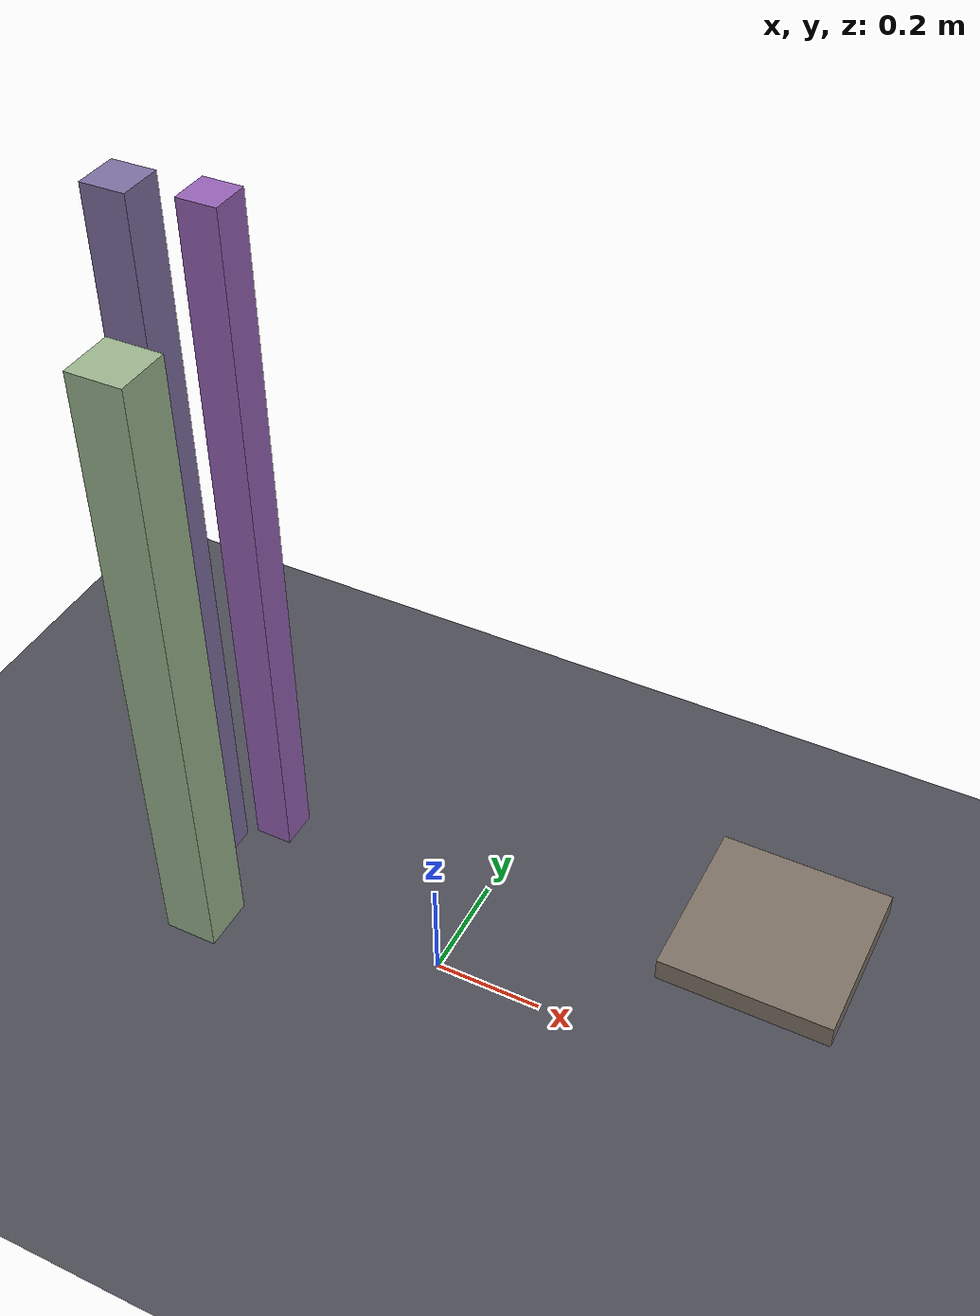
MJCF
<mujoco model="pillar_avoid_8">
  <compiler angle="radian" autolimits="true" boundmass="0" balanceinertia="true"/>
  <option impratio="10" gravity="0 0 -9.8" integrator="implicitfast" cone="elliptic" jacobian="sparse" noslip_iterations="4">
    <flag multiccd="enable" contact="enable" warmstart="enable"/>
  </option>
  <size njmax="6000" nconmax="6000"/>
  <visual><global offwidth="1280" offheight="720"/><map znear="0.001"/>
    <headlight ambient="0.45 0.45 0.45" diffuse="0.6 0.6 0.6"/></visual>
  <worldbody>
    <light pos="0.4 0.4 3" dir="0 0 -1" diffuse="0.7 0.7 0.7"/>
    <!-- Obstacle-avoidance variant 8: 3 tall PHYSICAL pillars; placements blocking >10%
         of exo-camera sightlines to the arm excluded (training view preserved). -->
    <body name="pillars" pos="0 0 0"><geom name="floor" type="plane" size="5 5 0.1" pos="0 0 0" rgba="0.30 0.30 0.34 1" contype="8" conaffinity="15"/><geom name="obj_pad" type="box" pos="0.60 0 0.42" size="0.14 0.14 0.02" rgba="0.5 0.45 0.4 1" contype="8" conaffinity="15"/><geom name="pillar_2" type="box" pos="-0.520 0.077 0.700" size="0.039 0.039 0.700" contype="8" conaffinity="15" rgba="0.49 0.44 0.63 1"/><geom name="pillar_3" type="box" pos="-0.431 0.167 0.677" size="0.036 0.036 0.677" contype="8" conaffinity="15" rgba="0.59 0.39 0.71 1"/><geom name="pillar_4" type="box" pos="-0.438 -0.091 0.605" size="0.050 0.050 0.605" contype="8" conaffinity="15" rgba="0.61 0.71 0.56 1"/></body>
  </worldbody>
</mujoco>
